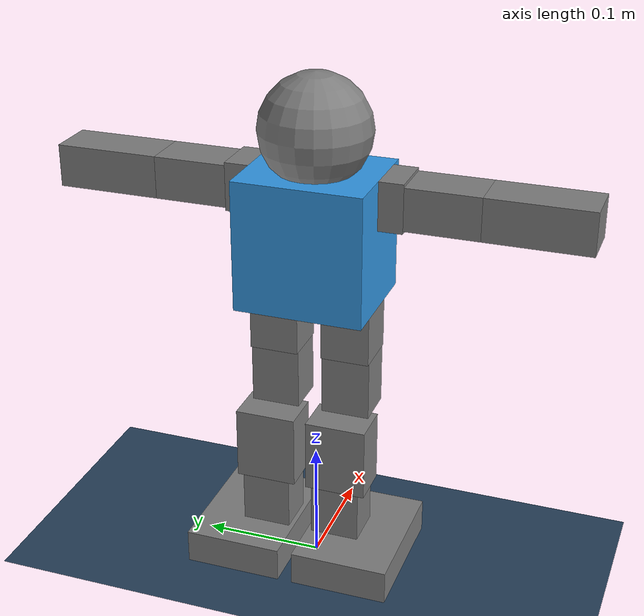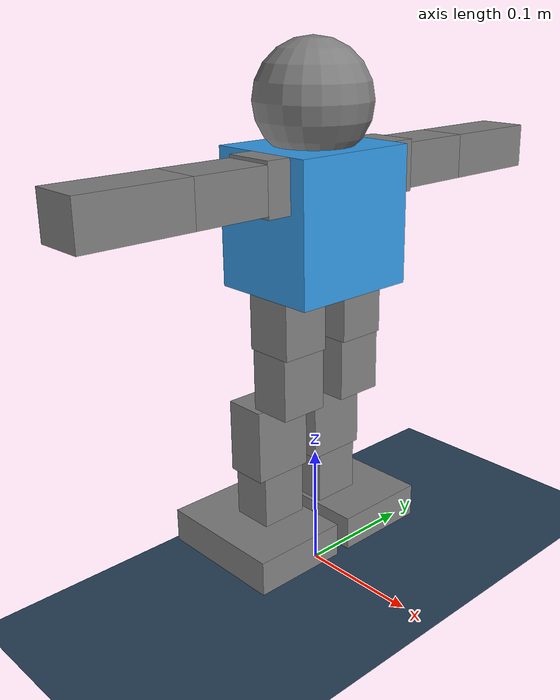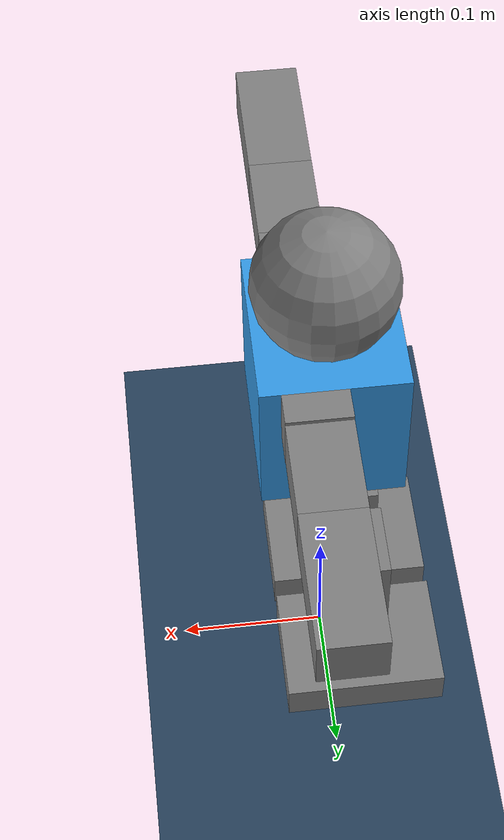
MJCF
<mujoco model="alpha_single">

  <compiler angle="radian" autolimits="true"/>
  <option timestep="0.005"
          solver="Newton"
          iterations="50"/>
  <default>
    <geom solref="0.05 1" solimp="0.9 0.95 0.001"/>
    <joint damping="0.25" armature="0.01"/>
  </default>

  <asset>
    <texture type="2d" name="groundplane" builtin="checker"
             rgb1="0.2 0.3 0.4" rgb2="0.1 0.2 0.3"
             markrgb="0.8 0.8 0.8" width="300" height="300"/>
    <material name="groundplane" texture="groundplane" texuniform="true"
              texrepeat="5 5" reflectance="0.2"/>
  </asset>

  <worldbody>
    <light pos="0 0 3" dir="0 0 -1" diffuse="0.8 0.8 0.8"/>
    <geom name="floor" size="100 100 0.1" type="plane" material="groundplane"
          condim="3" friction="1 0.1 0.01"/>

    <body name="root" pos="0 0 0.298" quat="1 0 0 0">
      <freejoint name="freejoint"/>
      <geom name="Body_link_col0" type="box" size="0.045 0.0525 0.0535"
            pos="0 0 0" rgba="0.2 0.6 0.9 1" condim="3"/>
      <inertial pos="0 0 0" mass="0.42"
                diaginertia="0.00078659 0.000684215 0.000669375"/>

      <body name="Head_link" pos="0 0 0.0855" quat="1 0 0 0">
        <geom name="Head_link_col0" type="sphere" size="0.045" pos="0 0 0" condim="3"/>
        <inertial pos="0 0 0" mass="0.066"
                  diaginertia="3.7125e-05 3.7125e-05 3.7125e-05"/>
      </body>

      <!-- Left leg -->
      <body name="Left_Lateral_Thigh_link" pos="0.0025 0.03 -0.0535"
            quat="0.707105 0 0.707108 0">
        <joint name="Left_Lateral_Thigh_link_joint" type="hinge" axis="0 0 1"
               range="-1.0 1.93" frictionloss="0.15"/>
        <geom name="Left_Lateral_Thigh_link_col0" type="box" size="0.02 0.02 0.0225"
              pos="0.0225 0 0" quat="0.707105 0 -0.707108 0" condim="3"/>
        <inertial pos="0 0 0" mass="0.07"
                  diaginertia="2.114583e-05 2.114583e-05 1.8667e-05"/>
        <body name="Left_Thigt_link" pos="0.0445 0 0"
              quat="0.499998 0.500000 -0.500000 0.500002">
          <joint name="Left_Thigt_link_joint" type="hinge" axis="0 0 1"
                 range="-1.57 1.57" frictionloss="0.15"/>
          <geom name="Left_Thigt_link_col0" type="box" size="0.0175 0.02 0.025"
                pos="0 -0.025 0" quat="0.707105 -0.707108 0 0" condim="3"/>
          <inertial pos="0 0 0" mass="0.115"
                    diaginertia="3.929166e-05 3.569791e-05 2.7073e-05"/>
          <body name="Left_Leg_Link" pos="-0.025 -0.050 0" quat="1 0 0 0">
            <joint name="Left_Leg_Link_joint" type="hinge" axis="0 0 1"
                   range="-2.7 0.3" frictionloss="0.15"/>
            <geom name="Left_Leg_Link_col0" type="box" size="0.0175 0.025 0.03"
                  pos="0 -0.03 0" quat="0.707105 -0.707108 0 0" condim="3"/>
            <inertial pos="0 0 0" mass="0.11"
                      diaginertia="5.5917e-05 4.4229e-05 3.4146e-05"/>
            <body name="Left_Ankle_link" pos="0 -0.06 0" quat="1 0 0 0">
              <joint name="Left_Ankle_link_joint" type="hinge" axis="0 0 1"
                     range="-1.57 1.57" frictionloss="0.15"/>
              <geom name="Left_Ankle_link_col0" type="box" size="0.0175 0.02 0.021"
                    pos="0 -0.021 0" quat="0.707105 -0.707108 0 0" condim="3"/>
              <inertial pos="0 0 0" mass="0.055"
                        diaginertia="1.5418e-05 1.37e-05 1.2948e-05"/>
              <body name="Left_Feet_link" pos="0 -0.047 0"
                    quat="0.499998 -0.500000 0.500002 -0.500000">
                <joint name="Left_Feet_link_joint" type="hinge" axis="0 0 1"
                       range="-1.57 0.43" frictionloss="0.15"/>
                <geom name="Left_Feet_link_col0" type="box" size="0.055 0.04 0.014"
                      pos="0.009 0.016 0" quat="-0.707108 0.000002 0.707105 0.000002"
                      condim="3"/>
                <inertial pos="0 0 0" mass="0.07"
                          diaginertia="4.1907e-05 7.5157e-05 0.000107917"/>
              </body>
            </body>
          </body>
        </body>
      </body>

      <!-- Left arm -->
      <body name="Left_Shoulder_link" pos="0.012 0.0525 0.0335"
            quat="0.707105 0.707108 0 0">
        <joint name="Left_Shoulder_link_joint" type="hinge" axis="0 0 1"
               range="0.0 3.1416" frictionloss="0.15"/>
        <geom name="Left_Shoulder_link_col0" type="box" size="0.02 0.01 0.02"
              pos="0 0 -0.01" quat="0.707105 -0.707108 0 0" condim="3"/>
        <inertial pos="0 0 0" mass="0.06" diaginertia="1e-05 1.6e-05 1e-05"/>
        <body name="Left_Arm_link" pos="0 0 -0.02"
              quat="0.499998 -0.500000 0.500002 -0.500000">
          <joint name="Left_Arm_link_joint" type="hinge" axis="0 0 1"
                 range="-1.57 1.57" frictionloss="0.15"/>
          <geom name="Left_Arm_link_col0" type="box" size="0.02 0.03 0.0175"
                pos="0 0.03 0" quat="0.707105 0 -0.707108 0" condim="3"/>
          <inertial pos="0 0 0" mass="0.0475"
                    diaginertia="1.9099e-05 1.1182e-05 2.0583e-05"/>
          <body name="Left_Hand_link" pos="0 0.06 0" quat="1 0 0 0">
            <joint name="Left_Hand_link_joint" type="hinge" axis="0 0 1"
                   range="-1.57 1.57" frictionloss="0.15"/>
            <geom name="Left_Hand_link_col0" type="box" size="0.02 0.0425 0.0175"
                  pos="0 0.0425 0" quat="0.707105 0 -0.707108 0" condim="3"/>
            <inertial pos="0 0 0" mass="0.02"
                      diaginertia="1.4083e-05 4.708e-06 1.4708e-05"/>
          </body>
        </body>
      </body>

      <!-- Right leg -->
      <body name="Right_Lateral_Thigh_link" pos="0.0025 -0.03 -0.0535"
            quat="0.707105 0 0.707108 0">
        <joint name="Right_Lateral_Thigh_link_joint" type="hinge" axis="0 0 1"
               range="-1.93 1.0" frictionloss="0.15"/>
        <geom name="Right_Lateral_Thigh_link_col0" type="box" size="0.02 0.02 0.0225"
              pos="0.0225 0 0" quat="0.707105 0 -0.707108 0" condim="3"/>
        <inertial pos="0 0 0" mass="0.07"
                  diaginertia="2.114583e-05 2.114583e-05 1.8667e-05"/>
        <body name="Right_Thigh_link" pos="0.0445 0 0"
              quat="0.499998 0.500000 -0.500000 0.500002">
          <joint name="Right_Thigh_link_joint" type="hinge" axis="0 0 1"
                 range="-1.57 1.57" frictionloss="0.15"/>
          <geom name="Right_Thigh_link_col0" type="box" size="0.0175 0.02 0.025"
                pos="0 -0.025 0" quat="0.707105 -0.707108 0 0" condim="3"/>
          <inertial pos="0 0 0" mass="0.115"
                    diaginertia="3.929166e-05 3.569791e-05 2.7073e-05"/>
          <body name="Right_Leg_link" pos="-0.025 -0.050 0" quat="1 0 0 0">
            <joint name="Right_Leg_link_joint" type="hinge" axis="0 0 1"
                   range="-2.7 0.3" frictionloss="0.15"/>
            <geom name="Right_Leg_link_col0" type="box" size="0.0175 0.025 0.03"
                  pos="0 -0.03 0" quat="0.707105 -0.707108 0 0" condim="3"/>
            <inertial pos="0 0 0" mass="0.11"
                      diaginertia="5.5917e-05 4.4229e-05 3.4146e-05"/>
            <body name="Right_Ankle_link" pos="0 -0.06 0" quat="1 0 0 0">
              <joint name="Right_Ankle_link_joint" type="hinge" axis="0 0 1"
                     range="-1.57 1.57" frictionloss="0.15"/>
              <geom name="Right_Ankle_link_col0" type="box" size="0.0175 0.02 0.021"
                    pos="0 -0.021 0" quat="0.707105 -0.707108 0 0" condim="3"/>
              <inertial pos="0 0 0" mass="0.055"
                        diaginertia="1.5418e-05 1.37e-05 1.2948e-05"/>
              <body name="Right_Feet_link" pos="0 -0.047 0"
                    quat="0.499998 -0.500000 0.500002 -0.500000">
                <joint name="Right_Feet_link_joint" type="hinge" axis="0 0 1"
                       range="-0.43 1.57" frictionloss="0.15"/>
                <geom name="Right_Feet_link_col0" type="box" size="0.055 0.04 0.014"
                      pos="0.009 -0.016 0" quat="-0.707108 0.000002 0.707105 0.000002"
                      condim="3"/>
                <inertial pos="0 0 0" mass="0.07"
                          diaginertia="4.1907e-05 7.5157e-05 0.000107917"/>
              </body>
            </body>
          </body>
        </body>
      </body>

      <!-- Right arm -->
      <body name="Right_Shoulder_link" pos="0.012 -0.0525 0.0335"
            quat="0.707105 0.707108 0 0">
        <joint name="Right_Shoulder_link_joint" type="hinge" axis="0 0 1"
               range="0.0 3.1416" frictionloss="0.15"/>
        <geom name="Right_Shoulder_link_col0" type="box" size="0.02 0.01 0.02"
              pos="0 0 0.01" quat="0.707105 -0.707108 0 0" condim="3"/>
        <inertial pos="0 0 0" mass="0.06" diaginertia="1e-05 1.6e-05 1e-05"/>
        <body name="Right_Arm_link" pos="0 0 0.02"
              quat="0.499998 -0.500000 0.500002 -0.500000">
          <joint name="Right_Arm_link_joint" type="hinge" axis="0 0 1"
                 range="-1.57 1.57" frictionloss="0.15"/>
          <geom name="Right_Arm_link_col0" type="box" size="0.02 0.03 0.0175"
                pos="0 -0.03 0" quat="0.707105 0 -0.707108 0" condim="3"/>
          <inertial pos="0 0 0" mass="0.0475"
                    diaginertia="1.9099e-05 1.1182e-05 2.0583e-05"/>
          <body name="Right_Hand_link" pos="0 -0.06 0" quat="1 0 0 0">
            <joint name="Right_Hand_link_joint" type="hinge" axis="0 0 1"
                   range="-1.57 1.57" frictionloss="0.15"/>
            <geom name="Right_Hand_link_col0" type="box" size="0.02 0.0425 0.0175"
                  pos="0 -0.0425 0" quat="0.707105 0 -0.707108 0" condim="3"/>
            <inertial pos="0 0 0" mass="0.02"
                      diaginertia="1.4083e-05 4.708e-06 1.4708e-05"/>
          </body>
        </body>
      </body>

    </body>
  </worldbody>

  <actuator>
    <!-- Left leg (5 joints) -->
    <position name="act_Left_Lateral_Thigh" joint="Left_Lateral_Thigh_link_joint"
              kp="20" kv="10" ctrlrange="-1.0 1.93"   forcerange="-1.5 1.5"/>
    <position name="act_Left_Thigt"         joint="Left_Thigt_link_joint"
              kp="20" kv="10" ctrlrange="-1.57 1.57"  forcerange="-1.5 1.5"/>
    <position name="act_Left_Leg"           joint="Left_Leg_Link_joint"
              kp="20" kv="10" ctrlrange="-2.7 0.3"    forcerange="-1.5 1.5"/>
    <position name="act_Left_Ankle"         joint="Left_Ankle_link_joint"
              kp="20" kv="10" ctrlrange="-1.57 1.57"  forcerange="-1.5 1.5"/>
    <position name="act_Left_Feet"          joint="Left_Feet_link_joint"
              kp="20" kv="10" ctrlrange="-1.57 0.43"  forcerange="-1.5 1.5"/>
    <!-- Left arm (3 joints) -->
    <position name="act_Left_Shoulder"      joint="Left_Shoulder_link_joint"
              kp="20" kv="10" ctrlrange="0.0 3.1416"  forcerange="-1.5 1.5"/>
    <position name="act_Left_Arm"           joint="Left_Arm_link_joint"
              kp="20" kv="10" ctrlrange="-1.57 1.57"  forcerange="-1.5 1.5"/>
    <position name="act_Left_Hand"          joint="Left_Hand_link_joint"
              kp="20" kv="10" ctrlrange="-1.57 1.57"  forcerange="-1.5 1.5"/>
    <!-- Right leg (5 joints) -->
    <position name="act_Right_Lateral_Thigh" joint="Right_Lateral_Thigh_link_joint"
              kp="20" kv="10" ctrlrange="-1.93 1.0"   forcerange="-1.5 1.5"/>
    <position name="act_Right_Thigh"         joint="Right_Thigh_link_joint"
              kp="20" kv="10" ctrlrange="-1.57 1.57"  forcerange="-1.5 1.5"/>
    <position name="act_Right_Leg"           joint="Right_Leg_link_joint"
              kp="20" kv="10" ctrlrange="-2.7 0.3"    forcerange="-1.5 1.5"/>
    <position name="act_Right_Ankle"         joint="Right_Ankle_link_joint"
              kp="20" kv="10" ctrlrange="-1.57 1.57"  forcerange="-1.5 1.5"/>
    <position name="act_Right_Feet"          joint="Right_Feet_link_joint"
              kp="20" kv="10" ctrlrange="-0.43 1.57"  forcerange="-1.5 1.5"/>
    <!-- Right arm (3 joints) -->
    <position name="act_Right_Shoulder"      joint="Right_Shoulder_link_joint"
              kp="20" kv="10" ctrlrange="0.0 3.1416"  forcerange="-1.5 1.5"/>
    <position name="act_Right_Arm"           joint="Right_Arm_link_joint"
              kp="20" kv="10" ctrlrange="-1.57 1.57"  forcerange="-1.5 1.5"/>
    <position name="act_Right_Hand"          joint="Right_Hand_link_joint"
              kp="20" kv="10" ctrlrange="-1.57 1.57"  forcerange="-1.5 1.5"/>
  </actuator>

</mujoco>
